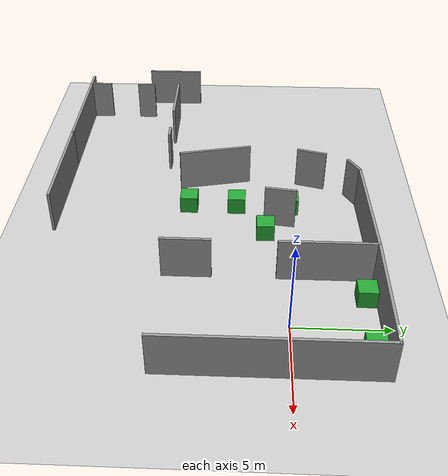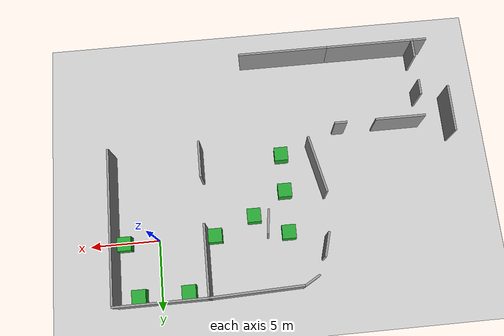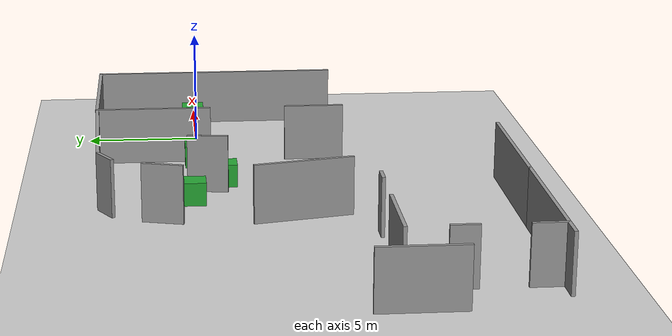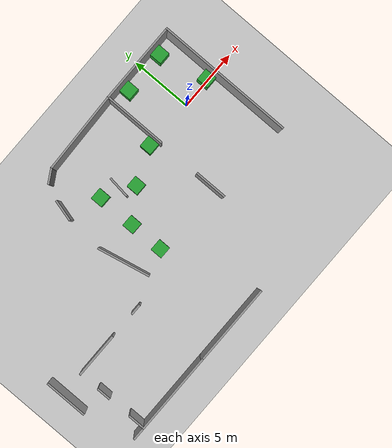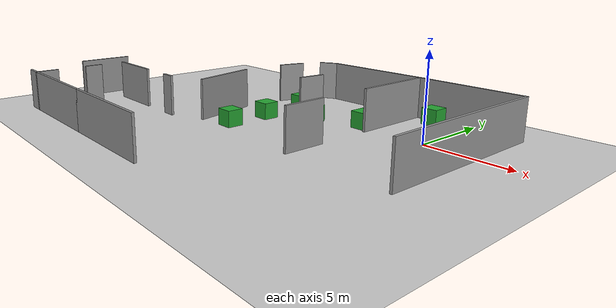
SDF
<sdf version="1.6">
 <world name="default">
  <light name="sun" type="directional">
   <pose>-10 -6.5 10 0 -0 0</pose>
   <diffuse>0.8 0.8 0.8 1</diffuse>
   <specular>0.2 0.2 0.2 1</specular>
   <attenuation>
    <range>1000</range>
    <constant>0.9</constant>
    <linear>0.01</linear>
    <quadratic>0.001</quadratic>
   </attenuation>
   <direction>-10.5 -6.4 -0.9</direction>
  </light>
  <model name="ground_plane">
   <static>1</static>
   <link name="link">
    <collision name="collision">
     <geometry><plane><normal>0 0 1</normal><size>100 100</size></plane></geometry>
     <surface>
      <contact><collide_bitmask>65535</collide_bitmask></contact>
      <friction><ode><mu>100</mu><mu2>50</mu2></ode></friction>
     </surface>
    </collision>
    <visual name="visual">
     <cast_shadows>0</cast_shadows>
     <geometry><plane><normal>0 0 1</normal><size>100 100</size></plane></geometry>
     <material>
      <script><uri>file://media/materials/scripts/gazebo.material</uri><name>Gazebo/Grey</name></script>
     </material>
    </visual>
   </link>
  </model>
  <gravity>0 0 -9.8</gravity>
  <magnetic_field>6e-06 2.3e-05 -4.2e-05</magnetic_field>
  <atmosphere type="adiabatic"/>
  <physics name="default_physics" default="0" type="ode">
   <max_step_size>0.001</max_step_size>
   <real_time_factor>1</real_time_factor>
   <real_time_update_rate>1000</real_time_update_rate>
  </physics>
  <scene><ambient>0.4 0.4 0.4 1</ambient><background>0.7 0.7 0.7 1</background><shadows>1</shadows></scene>
  <audio><device>default</device></audio>
  <spherical_coordinates>
   <surface_model>EARTH_WGS84</surface_model>
   <latitude_deg>0</latitude_deg>
   <longitude_deg>0</longitude_deg>
   <elevation>0</elevation>
   <heading_deg>0</heading_deg>
  </spherical_coordinates>
  <model name="technikum_digital_factory">
   <pose>5.46099 5.49277 0 0 -0 0</pose>
   <static>1</static>
   <link name="Wall_0">
    <collision name="Wall_0_Collision">
     <geometry><box><size>6.65 0.15 2.5</size></box></geometry>
     <pose>-10 -6.5 1.25 0 -0 0</pose>
    </collision>
    <visual name="Wall_0_Visual">
     <pose>-10 -6.5 1.25 0 -0 0</pose>
     <geometry><box><size>6.65 0.15 2.5</size></box></geometry>
     <material>
      <script><uri>file://media/materials/scripts/gazebo.material</uri><name>Gazebo/Grey</name></script>
      <ambient>1 1 1 1</ambient>
     </material>
     <meta><layer>0</layer></meta>
    </visual>
    <pose>-12.21099 -11.99277 0 0 -0 0</pose>
   </link>
   <link name="Wall_1">
    <collision name="Wall_1_Collision">
     <geometry><box><size>6.65 0.15 2.5</size></box></geometry>
     <pose>-10 -6.5 1.25 0 -0 0</pose>
    </collision>
    <visual name="Wall_1_Visual">
     <pose>-10 -6.5 1.25 0 -0 0</pose>
     <geometry><box><size>6.65 0.15 2.5</size></box></geometry>
     <material>
      <script><uri>file://media/materials/scripts/gazebo.material</uri><name>Gazebo/Grey</name></script>
      <ambient>1 1 1 1</ambient>
     </material>
     <meta><layer>0</layer></meta>
    </visual>
    <pose>-5.71099 -11.99277 0 0 -0 0</pose>
   </link>
   <link name="Wall_12">
    <collision name="Wall_12_Collision">
     <geometry><box><size>1.45 0.15 2.5</size></box></geometry>
     <pose>-6.5 10 1.25 0 -0 0</pose>
    </collision>
    <visual name="Wall_12_Visual">
     <pose>-6.5 10 1.25 0 -0 0</pose>
     <geometry><box><size>1.45 0.15 2.5</size></box></geometry>
     <material>
      <script><uri>file://media/materials/scripts/gazebo.material</uri><name>Gazebo/Grey</name></script>
      <ambient>1 1 1 1</ambient>
     </material>
     <meta><layer>0</layer></meta>
    </visual>
    <pose>-15.46099 -11.34277 0 0 -0 1.5708</pose>
   </link>
   <link name="Wall_14">
    <collision name="Wall_14_Collision">
     <geometry><box><size>0.9 0.15 2.5</size></box></geometry>
     <pose>10 6.5 1.25 0 -0 0</pose>
    </collision>
    <visual name="Wall_14_Visual">
     <pose>10 6.5 1.25 0 -0 0</pose>
     <geometry><box><size>0.9 0.15 2.5</size></box></geometry>
     <material>
      <script><uri>file://media/materials/scripts/gazebo.material</uri><name>Gazebo/Grey</name></script>
      <ambient>1 1 1 1</ambient>
     </material>
     <meta><layer>0</layer></meta>
    </visual>
    <pose>-9.335993 -5.992775 0 0 -0 3.14159</pose>
   </link>
   <link name="Wall_16">
    <collision name="Wall_16_Collision">
     <geometry><box><size>1.15 0.15 2.5</size></box></geometry>
     <pose>-6.5 10 1.25 0 -0 0</pose>
    </collision>
    <visual name="Wall_16_Visual">
     <pose>-6.5 10 1.25 0 -0 0</pose>
     <geometry><box><size>1.15 0.15 2.5</size></box></geometry>
     <material>
      <script><uri>file://media/materials/scripts/gazebo.material</uri><name>Gazebo/Grey</name></script>
      <ambient>1 1 1 1</ambient>
     </material>
     <meta><layer>0</layer></meta>
    </visual>
    <pose>-15.46099 -8.19277 0 0 -0 1.5708</pose>
   </link>
   <link name="Wall_18">
    <collision name="Wall_18_Collision">
     <geometry><box><size>3.65 0.15 2.5</size></box></geometry>
     <pose>-10 -6.5 1.25 0 -0 0</pose>
    </collision>
    <visual name="Wall_18_Visual">
     <pose>-10 -6.5 1.25 0 -0 0</pose>
     <geometry><box><size>3.65 0.15 2.5</size></box></geometry>
     <material>
      <script><uri>file://media/materials/scripts/gazebo.material</uri><name>Gazebo/Grey</name></script>
      <ambient>1 1 1 1</ambient>
     </material>
     <meta><layer>0</layer></meta>
    </visual>
    <pose>-13.71099 -5.992775 0 0 -0 0</pose>
   </link>
   <link name="Wall_3">
    <collision name="Wall_3_Collision">
     <geometry><box><size>1.15 0.15 2.5</size></box></geometry>
     <pose>10 6.5 1.25 0 -0 0</pose>
    </collision>
    <visual name="Wall_3_Visual">
     <pose>10 6.5 1.25 0 -0 0</pose>
     <geometry><box><size>1.15 0.15 2.5</size></box></geometry>
     <material>
      <script><uri>file://media/materials/scripts/gazebo.material</uri><name>Gazebo/Grey</name></script>
      <ambient>1 1 1 1</ambient>
     </material>
     <meta><layer>0</layer></meta>
    </visual>
    <pose>-15.96099 -11.99277 0 0 -0 3.14159</pose>
   </link>
   <link name="Wall_44">
    <collision name="Wall_44_Collision">
     <geometry><box><size>4.25 0.15 2.5</size></box></geometry>
     <pose>-3.76674 11.35 1.25 0 -0 0</pose>
    </collision>
    <visual name="Wall_44_Visual">
     <pose>-3.76674 11.35 1.25 0 -0 0</pose>
     <geometry><box><size>4.25 0.15 2.5</size></box></geometry>
     <material>
      <script><uri>file://media/materials/scripts/gazebo.material</uri><name>Gazebo/Grey</name></script>
      <ambient>1 1 1 1</ambient>
     </material>
     <meta><layer>0</layer></meta>
    </visual>
    <pose>-6.99157 -3.51263 0 0 -0 1.7826</pose>
   </link>
   <link name="Wall_45">
    <collision name="Wall_45_Collision">
     <geometry><box><size>3.5 0.15 2.5</size></box></geometry>
     <pose>-6.5 10 1.25 0 -0 0</pose>
    </collision>
    <visual name="Wall_45_Visual">
     <pose>-6.5 10 1.25 0 -0 0</pose>
     <geometry><box><size>3.5 0.15 2.5</size></box></geometry>
     <material>
      <script><uri>file://media/materials/scripts/gazebo.material</uri><name>Gazebo/Grey</name></script>
      <ambient>1 1 1 1</ambient>
     </material>
     <meta><layer>0</layer></meta>
    </visual>
    <pose>-17.52215 -6.357479 0 0 -0 1.5708</pose>
   </link>
   <link name="Wall_46">
    <collision name="Wall_46_Collision">
     <geometry><box><size>1.75 0.15 2.5</size></box></geometry>
     <pose>-8.8 8 1.25 0 -0 0</pose>
    </collision>
    <visual name="Wall_46_Visual">
     <pose>-8.8 8 1.25 0 -0 0</pose>
     <geometry><box><size>1.75 0.15 2.5</size></box></geometry>
     <material>
      <script><uri>file://media/materials/scripts/gazebo.material</uri><name>Gazebo/Grey</name></script>
      <ambient>1 1 1 1</ambient>
     </material>
     <meta><layer>0</layer></meta>
    </visual>
    <pose>-7.3151 2.59026 0 0 -0 1.309</pose>
   </link>
   <link name="Wall_47">
    <collision name="Wall_47_Collision">
     <geometry><box><size>1.75 0.15 2.5</size></box></geometry>
     <pose>-10.6 5.45 1.25 0 -0 0</pose>
    </collision>
    <visual name="Wall_47_Visual">
     <pose>-10.6 5.45 1.25 0 -0 0</pose>
     <geometry><box><size>1.75 0.15 2.5</size></box></geometry>
     <material>
      <script><uri>file://media/materials/scripts/gazebo.material</uri><name>Gazebo/Grey</name></script>
      <ambient>1 1 1 1</ambient>
     </material>
     <meta><layer>0</layer></meta>
    </visual>
    <pose>-6.70804 4.05582 0 0 -0 1.4472</pose>
   </link>
   <link name="Wall_48">
    <collision name="Wall_48_Collision">
     <geometry><box><size>1.25 0.15 2.5</size></box></geometry>
     <pose>-12.1 -0.55 1.25 0 -0 0</pose>
    </collision>
    <visual name="Wall_48_Visual">
     <pose>-12.1 -0.55 1.25 0 -0 0</pose>
     <geometry><box><size>1.25 0.15 2.5</size></box></geometry>
     <material>
      <script><uri>file://media/materials/scripts/gazebo.material</uri><name>Gazebo/Grey</name></script>
      <ambient>1 1 1 1</ambient>
     </material>
     <meta><layer>0</layer></meta>
    </visual>
    <pose>-5.83173 5.02364 0 0 -0 0.523599</pose>
   </link>
   <link name="Wall_49">
    <collision name="Wall_49_Collision">
     <geometry><box><size>6.54782 0.15 2.5</size></box></geometry>
     <pose>-10.3 -6.175 1.25 0 -0 0</pose>
    </collision>
    <visual name="Wall_49_Visual">
     <pose>-10.3 -6.175 1.25 0 -0 0</pose>
     <geometry><box><size>6.54782 0.15 2.5</size></box></geometry>
     <material>
      <script><uri>file://media/materials/scripts/gazebo.material</uri><name>Gazebo/Grey</name></script>
      <ambient>1 1 1 1</ambient>
     </material>
     <meta><layer>0</layer></meta>
    </visual>
    <pose>-2.1582 5.40293 0 0 -0 0.032608</pose>
   </link>
   <link name="Wall_5">
    <collision name="Wall_5_Collision">
     <geometry><box><size>11.15 0.15 2.5</size></box></geometry>
     <pose>-6.5 10 1.25 0 -0 0</pose>
    </collision>
    <visual name="Wall_5_Visual">
     <pose>-6.5 10 1.25 0 -0 0</pose>
     <geometry><box><size>11.15 0.15 2.5</size></box></geometry>
     <material>
      <script><uri>file://media/materials/scripts/gazebo.material</uri><name>Gazebo/Grey</name></script>
      <ambient>1 1 1 1</ambient>
     </material>
     <meta><layer>0</layer></meta>
    </visual>
    <pose>7.53901 0.007225 0 0 -0 1.5708</pose>
   </link>
   <link name="Wall_6">
    <collision name="Wall_6_Collision">
     <geometry><box><size>6.65 0.15 2.5</size></box></geometry>
     <pose>10 6.5 1.25 0 -0 0</pose>
    </collision>
    <visual name="Wall_6_Visual">
     <pose>10 6.5 1.25 0 -0 0</pose>
     <geometry><box><size>6.65 0.15 2.5</size></box></geometry>
     <material>
      <script><uri>file://media/materials/scripts/gazebo.material</uri><name>Gazebo/Grey</name></script>
      <ambient>1 1 1 1</ambient>
     </material>
     <meta><layer>0</layer></meta>
    </visual>
    <pose>4.28901 5.50723 0 0 -0 3.14159</pose>
   </link>
   <link name="Wall_7">
    <collision name="Wall_7_Collision">
     <geometry><box><size>5.15 0.15 2.5</size></box></geometry>
     <pose>6.5 -10 1.25 0 -0 0</pose>
    </collision>
    <visual name="Wall_7_Visual">
     <pose>6.5 -10 1.25 0 -0 0</pose>
     <geometry><box><size>5.15 0.15 2.5</size></box></geometry>
     <material>
      <script><uri>file://media/materials/scripts/gazebo.material</uri><name>Gazebo/Grey</name></script>
      <ambient>1 1 1 1</ambient>
     </material>
     <meta><layer>0</layer></meta>
    </visual>
    <pose>1.03901 3.00723 0 0 -0 -1.5708</pose>
   </link>
   <link name="Wall_9">
    <collision name="Wall_9_Collision">
     <geometry><box><size>2.65 0.15 2.5</size></box></geometry>
     <pose>-6.5 10 1.25 0 -0 0</pose>
    </collision>
    <visual name="Wall_9_Visual">
     <pose>-6.5 10 1.25 0 -0 0</pose>
     <geometry><box><size>2.65 0.15 2.5</size></box></geometry>
     <material>
      <script><uri>file://media/materials/scripts/gazebo.material</uri><name>Gazebo/Grey</name></script>
      <ambient>1 1 1 1</ambient>
     </material>
     <meta><layer>0</layer></meta>
    </visual>
    <pose>1.03901 -4.24277 0 0 -0 1.5708</pose>
   </link>
   <static>1</static>
  </model>
  <model name="station1">
   <pose>-9.4 -5.5 0.499995 1e-05 -0 0</pose>
   <static>1</static>
   <link name="link">
    <inertial>
     <mass>1</mass>
     <inertia>
      <ixx>0.166667</ixx>
      <ixy>0</ixy>
      <ixz>0</ixz>
      <iyy>0.166667</iyy>
      <iyz>0</iyz>
      <izz>0.166667</izz>
     </inertia>
    </inertial>
    <collision name="collision"><geometry><box><size>1 1 1</size></box></geometry></collision>
    <visual name="visual">
     <geometry><box><size>1 1 1</size></box></geometry>
     <material>
      <script><name>Gazebo/Green</name><uri>file://media/materials/scripts/gazebo.material</uri></script>
     </material>
    </visual>
   </link>
  </model>
  <model name="station2">
   <pose>-9.4 -2.73859 0.5 0 -0 0</pose>
   <static>1</static>
   <link name="link">
    <inertial>
     <mass>1</mass>
     <inertia>
      <ixx>0.166667</ixx>
      <ixy>0</ixy>
      <ixz>0</ixz>
      <iyy>0.166667</iyy>
      <iyz>0</iyz>
      <izz>0.166667</izz>
     </inertia>
    </inertial>
    <collision name="collision"><geometry><box><size>1 1 1</size></box></geometry></collision>
    <visual name="visual">
     <geometry><box><size>1 1 1</size></box></geometry>
     <material>
      <script><name>Gazebo/Green</name><uri>file://media/materials/scripts/gazebo.material</uri></script>
     </material>
    </visual>
   </link>
  </model>
  <model name="station3">
   <pose>-9.4 0.32263 0.5 0 -0 0</pose>
   <static>1</static>
   <link name="link">
    <inertial>
     <mass>1</mass>
     <inertia>
      <ixx>0.166667</ixx>
      <ixy>0</ixy>
      <ixz>0</ixz>
      <iyy>0.166667</iyy>
      <iyz>0</iyz>
      <izz>0.166667</izz>
     </inertia>
    </inertial>
    <collision name="collision"><geometry><box><size>1 1 1</size></box></geometry></collision>
    <visual name="visual">
     <geometry><box><size>1 1 1</size></box></geometry>
     <material>
      <script><name>Gazebo/Green</name><uri>file://media/materials/scripts/gazebo.material</uri></script>
     </material>
    </visual>
   </link>
  </model>
  <model name="station4">
   <pose>-7 -1.1 0.5 0 -0 0</pose>
   <static>1</static>
   <link name="link">
    <inertial>
     <mass>1</mass>
     <inertia>
      <ixx>0.166667</ixx>
      <ixy>0</ixy>
      <ixz>0</ixz>
      <iyy>0.166667</iyy>
      <iyz>0</iyz>
      <izz>0.166667</izz>
     </inertia>
    </inertial>
    <collision name="collision"><geometry><box><size>1 1 1</size></box></geometry></collision>
    <visual name="visual">
     <geometry><box><size>1 1 1</size></box></geometry>
     <material>
      <script><name>Gazebo/Green</name><uri>file://media/materials/scripts/gazebo.material</uri></script>
     </material>
    </visual>
   </link>
  </model>
  <model name="station5">
   <pose>-4.1 0.1 0.5 0 -0 0</pose>
   <static>1</static>
   <link name="link">
    <inertial>
     <mass>1</mass>
     <inertia>
      <ixx>0.166667</ixx>
      <ixy>0</ixy>
      <ixz>0</ixz>
      <iyy>0.166667</iyy>
      <iyz>0</iyz>
      <izz>0.166667</izz>
     </inertia>
    </inertial>
    <collision name="collision"><geometry><box><size>1 1 1</size></box></geometry></collision>
    <visual name="visual">
     <geometry><box><size>1 1 1</size></box></geometry>
     <material>
      <script><name>Gazebo/Green</name><uri>file://media/materials/scripts/gazebo.material</uri></script>
     </material>
    </visual>
   </link>
  </model>
  <model name="station6">
   <pose>-2 3.9 0.5 0 -0 0</pose>
   <static>1</static>
   <link name="link">
    <inertial>
     <mass>1</mass>
     <inertia>
      <ixx>0.166667</ixx>
      <ixy>0</ixy>
      <ixz>0</ixz>
      <iyy>0.166667</iyy>
      <iyz>0</iyz>
      <izz>0.166667</izz>
     </inertia>
    </inertial>
    <collision name="collision"><geometry><box><size>1 1 1</size></box></geometry></collision>
    <visual name="visual">
     <geometry><box><size>1 1 1</size></box></geometry>
     <material>
      <script><name>Gazebo/Green</name><uri>file://media/materials/scripts/gazebo.material</uri></script>
     </material>
    </visual>
   </link>
  </model>
  <model name="station7">
   <pose>1.5 3.9 0.5 0 -0 0</pose>
   <static>1</static>
   <link name="link">
    <inertial>
     <mass>1</mass>
     <inertia>
      <ixx>0.166667</ixx>
      <ixy>0</ixy>
      <ixz>0</ixz>
      <iyy>0.166667</iyy>
      <iyz>0</iyz>
      <izz>0.166667</izz>
     </inertia>
    </inertial>
    <collision name="collision"><geometry><box><size>1 1 1</size></box></geometry></collision>
    <visual name="visual">
     <geometry><box><size>1 1 1</size></box></geometry>
     <material>
      <script><name>Gazebo/Green</name><uri>file://media/materials/scripts/gazebo.material</uri></script>
     </material>
    </visual>
   </link>
  </model>
  <model name="station8">
   <pose>2.4 0.1 0.5 0 -0 0</pose>
   <static>1</static>
   <link name="link">
    <inertial>
     <mass>1</mass>
     <inertia>
      <ixx>0.166667</ixx>
      <ixy>0</ixy>
      <ixz>0</ixz>
      <iyy>0.166667</iyy>
      <iyz>0</iyz>
      <izz>0.166667</izz>
     </inertia>
    </inertial>
    <collision name="collision"><geometry><box><size>1 1 1</size></box></geometry></collision>
    <visual name="visual">
     <geometry><box><size>1 1 1</size></box></geometry>
     <material>
      <script><name>Gazebo/Green</name><uri>file://media/materials/scripts/gazebo.material</uri></script>
     </material>
    </visual>
   </link>
  </model>
 </world>
</sdf>
